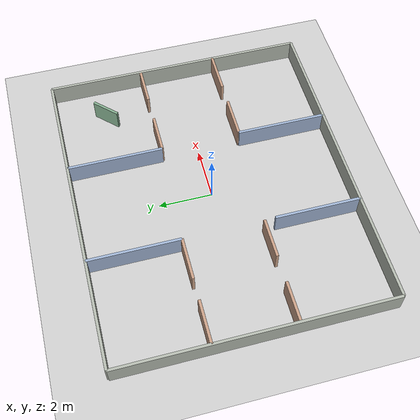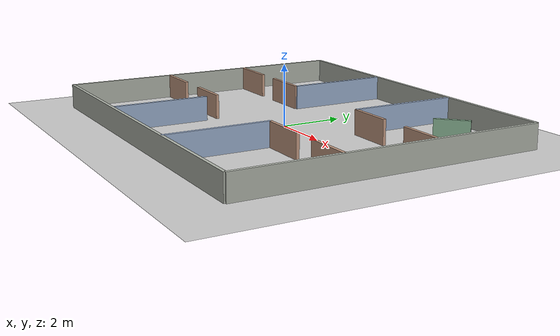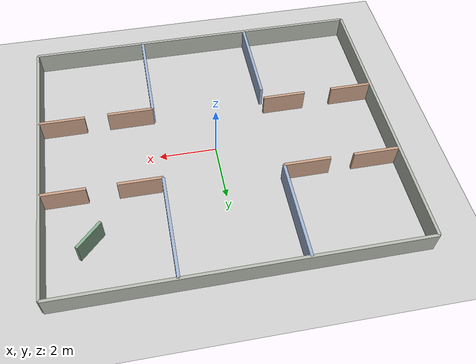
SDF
<?xml version="1.0" ?>
<sdf version="1.6">
  <world name="default">
    <gui>
      <camera name="user_camera">
        <pose>0 -11 13 0 0.92 1.5708</pose>
      </camera>
    </gui>

    <scene>
      <ambient>0.65 0.65 0.65 1</ambient>
      <background>0.55 0.58 0.62 1</background>
      <shadows>1</shadows>
      <grid>0</grid>
      <origin_visual>0</origin_visual>
    </scene>

    <include>
      <uri>model://ground_plane</uri>
    </include>

    <include>
      <uri>model://sun</uri>
    </include>

    <!-- Small indoor map: 0.1 m walls, 0.8 m height, explicit 1.2-1.6 m door openings. -->
    <model name="slam_rooms_walls">
      <static>true</static>

      <link name="north_wall">
        <pose>0 5 0.4 0 0 0</pose>
        <collision name="collision"><geometry><box><size>12 0.1 0.8</size></box></geometry></collision>
        <visual name="visual"><geometry><box><size>12 0.1 0.8</size></box></geometry><material><ambient>0.70 0.72 0.68 1</ambient><diffuse>0.70 0.72 0.68 1</diffuse></material></visual>
      </link>
      <link name="south_wall">
        <pose>0 -5 0.4 0 0 0</pose>
        <collision name="collision"><geometry><box><size>12 0.1 0.8</size></box></geometry></collision>
        <visual name="visual"><geometry><box><size>12 0.1 0.8</size></box></geometry><material><ambient>0.70 0.72 0.68 1</ambient><diffuse>0.70 0.72 0.68 1</diffuse></material></visual>
      </link>
      <link name="east_wall">
        <pose>6 0 0.4 0 0 1.5708</pose>
        <collision name="collision"><geometry><box><size>10 0.1 0.8</size></box></geometry></collision>
        <visual name="visual"><geometry><box><size>10 0.1 0.8</size></box></geometry><material><ambient>0.70 0.72 0.68 1</ambient><diffuse>0.70 0.72 0.68 1</diffuse></material></visual>
      </link>
      <link name="west_wall">
        <pose>-6 0 0.4 0 0 1.5708</pose>
        <collision name="collision"><geometry><box><size>10 0.1 0.8</size></box></geometry></collision>
        <visual name="visual"><geometry><box><size>10 0.1 0.8</size></box></geometry><material><ambient>0.70 0.72 0.68 1</ambient><diffuse>0.70 0.72 0.68 1</diffuse></material></visual>
      </link>

      <link name="left_vertical_top">
        <pose>-2 3.3 0.4 0 0 1.5708</pose>
        <collision name="collision"><geometry><box><size>3.4 0.1 0.8</size></box></geometry></collision>
        <visual name="visual"><geometry><box><size>3.4 0.1 0.8</size></box></geometry><material><ambient>0.62 0.70 0.82 1</ambient><diffuse>0.62 0.70 0.82 1</diffuse></material></visual>
      </link>
      <link name="left_vertical_bottom">
        <pose>-2 -3.4 0.4 0 0 1.5708</pose>
        <collision name="collision"><geometry><box><size>3.2 0.1 0.8</size></box></geometry></collision>
        <visual name="visual"><geometry><box><size>3.2 0.1 0.8</size></box></geometry><material><ambient>0.62 0.70 0.82 1</ambient><diffuse>0.62 0.70 0.82 1</diffuse></material></visual>
      </link>
      <link name="right_vertical_top">
        <pose>2 3.2 0.4 0 0 1.5708</pose>
        <collision name="collision"><geometry><box><size>3.6 0.1 0.8</size></box></geometry></collision>
        <visual name="visual"><geometry><box><size>3.6 0.1 0.8</size></box></geometry><material><ambient>0.62 0.70 0.82 1</ambient><diffuse>0.62 0.70 0.82 1</diffuse></material></visual>
      </link>
      <link name="right_vertical_bottom">
        <pose>2 -3.3 0.4 0 0 1.5708</pose>
        <collision name="collision"><geometry><box><size>3.4 0.1 0.8</size></box></geometry></collision>
        <visual name="visual"><geometry><box><size>3.4 0.1 0.8</size></box></geometry><material><ambient>0.62 0.70 0.82 1</ambient><diffuse>0.62 0.70 0.82 1</diffuse></material></visual>
      </link>

      <link name="upper_left_partition_west">
        <pose>-5.2 1.6 0.4 0 0 0</pose>
        <collision name="collision"><geometry><box><size>1.6 0.1 0.8</size></box></geometry></collision>
        <visual name="visual"><geometry><box><size>1.6 0.1 0.8</size></box></geometry><material><ambient>0.78 0.62 0.52 1</ambient><diffuse>0.78 0.62 0.52 1</diffuse></material></visual>
      </link>
      <link name="upper_left_partition_east">
        <pose>-2.8 1.6 0.4 0 0 0</pose>
        <collision name="collision"><geometry><box><size>1.6 0.1 0.8</size></box></geometry></collision>
        <visual name="visual"><geometry><box><size>1.6 0.1 0.8</size></box></geometry><material><ambient>0.78 0.62 0.52 1</ambient><diffuse>0.78 0.62 0.52 1</diffuse></material></visual>
      </link>
      <link name="lower_left_partition_west">
        <pose>-5.25 -1.4 0.4 0 0 0</pose>
        <collision name="collision"><geometry><box><size>1.5 0.1 0.8</size></box></geometry></collision>
        <visual name="visual"><geometry><box><size>1.5 0.1 0.8</size></box></geometry><material><ambient>0.78 0.62 0.52 1</ambient><diffuse>0.78 0.62 0.52 1</diffuse></material></visual>
      </link>
      <link name="lower_left_partition_east">
        <pose>-2.75 -1.4 0.4 0 0 0</pose>
        <collision name="collision"><geometry><box><size>1.5 0.1 0.8</size></box></geometry></collision>
        <visual name="visual"><geometry><box><size>1.5 0.1 0.8</size></box></geometry><material><ambient>0.78 0.62 0.52 1</ambient><diffuse>0.78 0.62 0.52 1</diffuse></material></visual>
      </link>
      <link name="upper_right_partition_west">
        <pose>2.75 1.4 0.4 0 0 0</pose>
        <collision name="collision"><geometry><box><size>1.5 0.1 0.8</size></box></geometry></collision>
        <visual name="visual"><geometry><box><size>1.5 0.1 0.8</size></box></geometry><material><ambient>0.78 0.62 0.52 1</ambient><diffuse>0.78 0.62 0.52 1</diffuse></material></visual>
      </link>
      <link name="upper_right_partition_east">
        <pose>5.25 1.4 0.4 0 0 0</pose>
        <collision name="collision"><geometry><box><size>1.5 0.1 0.8</size></box></geometry></collision>
        <visual name="visual"><geometry><box><size>1.5 0.1 0.8</size></box></geometry><material><ambient>0.78 0.62 0.52 1</ambient><diffuse>0.78 0.62 0.52 1</diffuse></material></visual>
      </link>
      <link name="lower_right_partition_west">
        <pose>2.8 -1.6 0.4 0 0 0</pose>
        <collision name="collision"><geometry><box><size>1.6 0.1 0.8</size></box></geometry></collision>
        <visual name="visual"><geometry><box><size>1.6 0.1 0.8</size></box></geometry><material><ambient>0.78 0.62 0.52 1</ambient><diffuse>0.78 0.62 0.52 1</diffuse></material></visual>
      </link>
      <link name="lower_right_partition_east">
        <pose>5.2 -1.6 0.4 0 0 0</pose>
        <collision name="collision"><geometry><box><size>1.6 0.1 0.8</size></box></geometry></collision>
        <visual name="visual"><geometry><box><size>1.6 0.1 0.8</size></box></geometry><material><ambient>0.78 0.62 0.52 1</ambient><diffuse>0.78 0.62 0.52 1</diffuse></material></visual>
      </link>

      <link name="short_landmark">
        <pose>4.5 3.1 0.4 0 0 0.7854</pose>
        <collision name="collision"><geometry><box><size>1.1 0.1 0.8</size></box></geometry></collision>
        <visual name="visual"><geometry><box><size>1.1 0.1 0.8</size></box></geometry><material><ambient>0.52 0.68 0.56 1</ambient><diffuse>0.52 0.68 0.56 1</diffuse></material></visual>
      </link>
    </model>
  </world>
</sdf>
